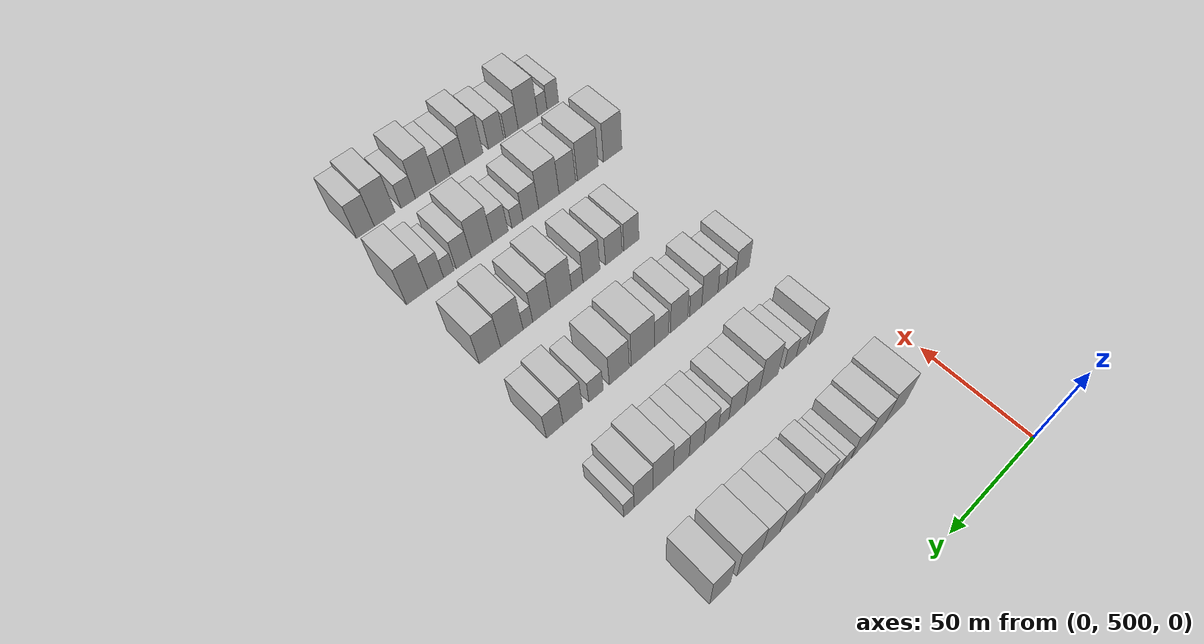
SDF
<sdf version="1.6">
 <world name="default">
  <model name="building_123">
   <static>1</static>
   <pose>50.0000 528.4596 0 0.000000 0.000000 0.000000</pose>
   <link name="link">
    <pose>0 0 12.00 0 0 0</pose>
    <collision name="collision"><geometry><box><size>20.0000 11.9385 24.0000</size></box></geometry></collision>
    <visual name="visual">
     <cast_shadows>0</cast_shadows>
     <geometry><box><size>20.0000 11.9385 24.0000</size></box></geometry>
     <material>
      <script>
       <uri>model://HANNAS_wall/materials/scripts</uri>
       <uri>model://HANNAS_wall/materials/textures</uri>
       <name>vrc/HANNAS_wall</name>
      </script>
     </material>
    </visual>
   </link>
  </model>
  <model name="building_124">
   <static>1</static>
   <pose>50.0000 539.5472 0 0.000000 0.000000 0.000000</pose>
   <link name="link">
    <pose>0 0 10.50 0 0 0</pose>
    <collision name="collision"><geometry><box><size>20.0000 10.2366 21.0000</size></box></geometry></collision>
    <visual name="visual">
     <cast_shadows>0</cast_shadows>
     <geometry><box><size>20.0000 10.2366 21.0000</size></box></geometry>
     <material>
      <script>
       <uri>model://HANNAS_wall/materials/scripts</uri>
       <uri>model://HANNAS_wall/materials/textures</uri>
       <name>vrc/HANNAS_wall</name>
      </script>
     </material>
    </visual>
   </link>
  </model>
  <model name="building_125">
   <static>1</static>
   <pose>50.0000 548.7740 0 0.000000 0.000000 0.000000</pose>
   <link name="link">
    <pose>0 0 9.00 0 0 0</pose>
    <collision name="collision"><geometry><box><size>20.0000 8.2170 18.0000</size></box></geometry></collision>
    <visual name="visual">
     <cast_shadows>0</cast_shadows>
     <geometry><box><size>20.0000 8.2170 18.0000</size></box></geometry>
     <material>
      <script>
       <uri>model://HANNAS_wall/materials/scripts</uri>
       <uri>model://HANNAS_wall/materials/textures</uri>
       <name>vrc/HANNAS_wall</name>
      </script>
     </material>
    </visual>
   </link>
  </model>
  <model name="building_126">
   <static>1</static>
   <pose>50.0000 556.3509 0 0.000000 0.000000 0.000000</pose>
   <link name="link">
    <pose>0 0 6.00 0 0 0</pose>
    <collision name="collision"><geometry><box><size>20.0000 4.9368 12.0000</size></box></geometry></collision>
    <visual name="visual">
     <cast_shadows>0</cast_shadows>
     <geometry><box><size>20.0000 4.9368 12.0000</size></box></geometry>
     <material>
      <script>
       <uri>model://HANNAS_wall/materials/scripts</uri>
       <uri>model://HANNAS_wall/materials/textures</uri>
       <name>vrc/HANNAS_wall</name>
      </script>
     </material>
    </visual>
   </link>
  </model>
  <model name="building_127">
   <static>1</static>
   <pose>50.0000 561.2526 0 0.000000 0.000000 0.000000</pose>
   <link name="link">
    <pose>0 0 6.00 0 0 0</pose>
    <collision name="collision"><geometry><box><size>20.0000 4.8665 12.0000</size></box></geometry></collision>
    <visual name="visual">
     <cast_shadows>0</cast_shadows>
     <geometry><box><size>20.0000 4.8665 12.0000</size></box></geometry>
     <material>
      <script>
       <uri>model://HANNAS_wall/materials/scripts</uri>
       <uri>model://HANNAS_wall/materials/textures</uri>
       <name>vrc/HANNAS_wall</name>
      </script>
     </material>
    </visual>
   </link>
  </model>
  <model name="building_128">
   <static>1</static>
   <pose>50.0000 567.3759 0 0.000000 0.000000 0.000000</pose>
   <link name="link">
    <pose>0 0 9.00 0 0 0</pose>
    <collision name="collision"><geometry><box><size>20.0000 7.3802 18.0000</size></box></geometry></collision>
    <visual name="visual">
     <cast_shadows>0</cast_shadows>
     <geometry><box><size>20.0000 7.3802 18.0000</size></box></geometry>
     <material>
      <script>
       <uri>model://HANNAS_wall/materials/scripts</uri>
       <uri>model://HANNAS_wall/materials/textures</uri>
       <name>vrc/HANNAS_wall</name>
      </script>
     </material>
    </visual>
   </link>
  </model>
  <model name="building_129">
   <static>1</static>
   <pose>50.0000 577.3105 0 0.000000 0.000000 0.000000</pose>
   <link name="link">
    <pose>0 0 9.00 0 0 0</pose>
    <collision name="collision"><geometry><box><size>20.0000 8.4890 18.0000</size></box></geometry></collision>
    <visual name="visual">
     <cast_shadows>0</cast_shadows>
     <geometry><box><size>20.0000 8.4890 18.0000</size></box></geometry>
     <material>
      <script>
       <uri>model://HANNAS_wall/materials/scripts</uri>
       <uri>model://HANNAS_wall/materials/textures</uri>
       <name>vrc/HANNAS_wall</name>
      </script>
     </material>
    </visual>
   </link>
  </model>
  <model name="building_130">
   <static>1</static>
   <pose>50.0000 586.0100 0 0.000000 0.000000 0.000000</pose>
   <link name="link">
    <pose>0 0 10.50 0 0 0</pose>
    <collision name="collision"><geometry><box><size>20.0000 8.9100 21.0000</size></box></geometry></collision>
    <visual name="visual">
     <cast_shadows>0</cast_shadows>
     <geometry><box><size>20.0000 8.9100 21.0000</size></box></geometry>
     <material>
      <script>
       <uri>model://HANNAS_wall/materials/scripts</uri>
       <uri>model://HANNAS_wall/materials/textures</uri>
       <name>vrc/HANNAS_wall</name>
      </script>
     </material>
    </visual>
   </link>
  </model>
  <model name="building_131">
   <static>1</static>
   <pose>50.0000 595.0280 0 0.000000 0.000000 0.000000</pose>
   <link name="link">
    <pose>0 0 10.50 0 0 0</pose>
    <collision name="collision"><geometry><box><size>20.0000 9.1259 21.0000</size></box></geometry></collision>
    <visual name="visual">
     <cast_shadows>0</cast_shadows>
     <geometry><box><size>20.0000 9.1259 21.0000</size></box></geometry>
     <material>
      <script>
       <uri>model://HANNAS_wall/materials/scripts</uri>
       <uri>model://HANNAS_wall/materials/textures</uri>
       <name>vrc/HANNAS_wall</name>
      </script>
     </material>
    </visual>
   </link>
  </model>
  <model name="building_132">
   <static>1</static>
   <pose>50.0000 605.5734 0 0.000000 0.000000 0.000000</pose>
   <link name="link">
    <pose>0 0 12.00 0 0 0</pose>
    <collision name="collision"><geometry><box><size>20.0000 11.9650 24.0000</size></box></geometry></collision>
    <visual name="visual">
     <cast_shadows>0</cast_shadows>
     <geometry><box><size>20.0000 11.9650 24.0000</size></box></geometry>
     <material>
      <script>
       <uri>model://HANNAS_wall/materials/scripts</uri>
       <uri>model://HANNAS_wall/materials/textures</uri>
       <name>vrc/HANNAS_wall</name>
      </script>
     </material>
    </visual>
   </link>
  </model>
  <model name="building_133">
   <static>1</static>
   <pose>50.0000 619.4041 0 0.000000 0.000000 0.000000</pose>
   <link name="link">
    <pose>0 0 12.00 0 0 0</pose>
    <collision name="collision"><geometry><box><size>20.0000 9.6963 24.0000</size></box></geometry></collision>
    <visual name="visual">
     <cast_shadows>0</cast_shadows>
     <geometry><box><size>20.0000 9.6963 24.0000</size></box></geometry>
     <material>
      <script>
       <uri>model://HANNAS_wall/materials/scripts</uri>
       <uri>model://HANNAS_wall/materials/textures</uri>
       <name>vrc/HANNAS_wall</name>
      </script>
     </material>
    </visual>
   </link>
  </model>
  <model name="building_273">
   <static>1</static>
   <pose>90.0000 525.0788 0 0.000000 0.000000 0.000000</pose>
   <link name="link">
    <pose>0 0 9.00 0 0 0</pose>
    <collision name="collision"><geometry><box><size>20.0000 7.4290 18.0000</size></box></geometry></collision>
    <visual name="visual">
     <cast_shadows>0</cast_shadows>
     <geometry><box><size>20.0000 7.4290 18.0000</size></box></geometry>
     <material>
      <script>
       <uri>model://HANNAS_wall/materials/scripts</uri>
       <uri>model://HANNAS_wall/materials/textures</uri>
       <name>vrc/HANNAS_wall</name>
      </script>
     </material>
    </visual>
   </link>
  </model>
  <model name="building_274">
   <static>1</static>
   <pose>90.0000 533.7350 0 0.000000 0.000000 0.000000</pose>
   <link name="link">
    <pose>0 0 6.00 0 0 0</pose>
    <collision name="collision"><geometry><box><size>20.0000 5.8834 12.0000</size></box></geometry></collision>
    <visual name="visual">
     <cast_shadows>0</cast_shadows>
     <geometry><box><size>20.0000 5.8834 12.0000</size></box></geometry>
     <material>
      <script>
       <uri>model://HANNAS_wall/materials/scripts</uri>
       <uri>model://HANNAS_wall/materials/textures</uri>
       <name>vrc/HANNAS_wall</name>
      </script>
     </material>
    </visual>
   </link>
  </model>
  <model name="building_275">
   <static>1</static>
   <pose>90.0000 540.2137 0 0.000000 0.000000 0.000000</pose>
   <link name="link">
    <pose>0 0 7.50 0 0 0</pose>
    <collision name="collision"><geometry><box><size>20.0000 7.0739 15.0000</size></box></geometry></collision>
    <visual name="visual">
     <cast_shadows>0</cast_shadows>
     <geometry><box><size>20.0000 7.0739 15.0000</size></box></geometry>
     <material>
      <script>
       <uri>model://HANNAS_wall/materials/scripts</uri>
       <uri>model://HANNAS_wall/materials/textures</uri>
       <name>vrc/HANNAS_wall</name>
      </script>
     </material>
    </visual>
   </link>
  </model>
  <model name="building_276">
   <static>1</static>
   <pose>90.0000 551.8007 0 0.000000 0.000000 0.000000</pose>
   <link name="link">
    <pose>0 0 12.00 0 0 0</pose>
    <collision name="collision"><geometry><box><size>20.0000 10.1002 24.0000</size></box></geometry></collision>
    <visual name="visual">
     <cast_shadows>0</cast_shadows>
     <geometry><box><size>20.0000 10.1002 24.0000</size></box></geometry>
     <material>
      <script>
       <uri>model://HANNAS_wall/materials/scripts</uri>
       <uri>model://HANNAS_wall/materials/textures</uri>
       <name>vrc/HANNAS_wall</name>
      </script>
     </material>
    </visual>
   </link>
  </model>
  <model name="building_277">
   <static>1</static>
   <pose>90.0000 560.8175 0 0.000000 0.000000 0.000000</pose>
   <link name="link">
    <pose>0 0 9.00 0 0 0</pose>
    <collision name="collision"><geometry><box><size>20.0000 7.9333 18.0000</size></box></geometry></collision>
    <visual name="visual">
     <cast_shadows>0</cast_shadows>
     <geometry><box><size>20.0000 7.9333 18.0000</size></box></geometry>
     <material>
      <script>
       <uri>model://HANNAS_wall/materials/scripts</uri>
       <uri>model://HANNAS_wall/materials/textures</uri>
       <name>vrc/HANNAS_wall</name>
      </script>
     </material>
    </visual>
   </link>
  </model>
  <model name="building_278">
   <static>1</static>
   <pose>90.0000 568.9776 0 0.000000 0.000000 0.000000</pose>
   <link name="link">
    <pose>0 0 9.00 0 0 0</pose>
    <collision name="collision"><geometry><box><size>20.0000 8.3871 18.0000</size></box></geometry></collision>
    <visual name="visual">
     <cast_shadows>0</cast_shadows>
     <geometry><box><size>20.0000 8.3871 18.0000</size></box></geometry>
     <material>
      <script>
       <uri>model://HANNAS_wall/materials/scripts</uri>
       <uri>model://HANNAS_wall/materials/textures</uri>
       <name>vrc/HANNAS_wall</name>
      </script>
     </material>
    </visual>
   </link>
  </model>
  <model name="building_279">
   <static>1</static>
   <pose>90.0000 575.8162 0 0.000000 0.000000 0.000000</pose>
   <link name="link">
    <pose>0 0 6.00 0 0 0</pose>
    <collision name="collision"><geometry><box><size>20.0000 5.2901 12.0000</size></box></geometry></collision>
    <visual name="visual">
     <cast_shadows>0</cast_shadows>
     <geometry><box><size>20.0000 5.2901 12.0000</size></box></geometry>
     <material>
      <script>
       <uri>model://HANNAS_wall/materials/scripts</uri>
       <uri>model://HANNAS_wall/materials/textures</uri>
       <name>vrc/HANNAS_wall</name>
      </script>
     </material>
    </visual>
   </link>
  </model>
  <model name="building_280">
   <static>1</static>
   <pose>90.0000 582.1972 0 0.000000 0.000000 0.000000</pose>
   <link name="link">
    <pose>0 0 9.00 0 0 0</pose>
    <collision name="collision"><geometry><box><size>20.0000 7.4720 18.0000</size></box></geometry></collision>
    <visual name="visual">
     <cast_shadows>0</cast_shadows>
     <geometry><box><size>20.0000 7.4720 18.0000</size></box></geometry>
     <material>
      <script>
       <uri>model://HANNAS_wall/materials/scripts</uri>
       <uri>model://HANNAS_wall/materials/textures</uri>
       <name>vrc/HANNAS_wall</name>
      </script>
     </material>
    </visual>
   </link>
  </model>
  <model name="building_281">
   <static>1</static>
   <pose>90.0000 589.6375 0 0.000000 0.000000 0.000000</pose>
   <link name="link">
    <pose>0 0 9.00 0 0 0</pose>
    <collision name="collision"><geometry><box><size>20.0000 7.4086 18.0000</size></box></geometry></collision>
    <visual name="visual">
     <cast_shadows>0</cast_shadows>
     <geometry><box><size>20.0000 7.4086 18.0000</size></box></geometry>
     <material>
      <script>
       <uri>model://HANNAS_wall/materials/scripts</uri>
       <uri>model://HANNAS_wall/materials/textures</uri>
       <name>vrc/HANNAS_wall</name>
      </script>
     </material>
    </visual>
   </link>
  </model>
  <model name="building_282">
   <static>1</static>
   <pose>90.0000 597.2468 0 0.000000 0.000000 0.000000</pose>
   <link name="link">
    <pose>0 0 9.00 0 0 0</pose>
    <collision name="collision"><geometry><box><size>20.0000 7.8099 18.0000</size></box></geometry></collision>
    <visual name="visual">
     <cast_shadows>0</cast_shadows>
     <geometry><box><size>20.0000 7.8099 18.0000</size></box></geometry>
     <material>
      <script>
       <uri>model://HANNAS_wall/materials/scripts</uri>
       <uri>model://HANNAS_wall/materials/textures</uri>
       <name>vrc/HANNAS_wall</name>
      </script>
     </material>
    </visual>
   </link>
  </model>
  <model name="building_283">
   <static>1</static>
   <pose>90.0000 605.9520 0 0.000000 0.000000 0.000000</pose>
   <link name="link">
    <pose>0 0 12.00 0 0 0</pose>
    <collision name="collision"><geometry><box><size>20.0000 9.6005 24.0000</size></box></geometry></collision>
    <visual name="visual">
     <cast_shadows>0</cast_shadows>
     <geometry><box><size>20.0000 9.6005 24.0000</size></box></geometry>
     <material>
      <script>
       <uri>model://HANNAS_wall/materials/scripts</uri>
       <uri>model://HANNAS_wall/materials/textures</uri>
       <name>vrc/HANNAS_wall</name>
      </script>
     </material>
    </visual>
   </link>
  </model>
  <model name="building_284">
   <static>1</static>
   <pose>90.0000 615.2325 0 0.000000 0.000000 0.000000</pose>
   <link name="link">
    <pose>0 0 10.50 0 0 0</pose>
    <collision name="collision"><geometry><box><size>20.0000 8.9605 21.0000</size></box></geometry></collision>
    <visual name="visual">
     <cast_shadows>0</cast_shadows>
     <geometry><box><size>20.0000 8.9605 21.0000</size></box></geometry>
     <material>
      <script>
       <uri>model://HANNAS_wall/materials/scripts</uri>
       <uri>model://HANNAS_wall/materials/textures</uri>
       <name>vrc/HANNAS_wall</name>
      </script>
     </material>
    </visual>
   </link>
  </model>
  <model name="building_285">
   <static>1</static>
   <pose>90.0000 622.1455 0 0.000000 0.000000 0.000000</pose>
   <link name="link">
    <pose>0 0 6.00 0 0 0</pose>
    <collision name="collision"><geometry><box><size>20.0000 4.8655 12.0000</size></box></geometry></collision>
    <visual name="visual">
     <cast_shadows>0</cast_shadows>
     <geometry><box><size>20.0000 4.8655 12.0000</size></box></geometry>
     <material>
      <script>
       <uri>model://HANNAS_wall/materials/scripts</uri>
       <uri>model://HANNAS_wall/materials/textures</uri>
       <name>vrc/HANNAS_wall</name>
      </script>
     </material>
    </visual>
   </link>
  </model>
  <model name="building_403">
   <static>1</static>
   <pose>130.0000 523.1226 0 0.000000 0.000000 0.000000</pose>
   <link name="link">
    <pose>0 0 9.00 0 0 0</pose>
    <collision name="collision"><geometry><box><size>20.0000 7.9618 18.0000</size></box></geometry></collision>
    <visual name="visual">
     <cast_shadows>0</cast_shadows>
     <geometry><box><size>20.0000 7.9618 18.0000</size></box></geometry>
     <material>
      <script>
       <uri>model://HANNAS_wall/materials/scripts</uri>
       <uri>model://HANNAS_wall/materials/textures</uri>
       <name>vrc/HANNAS_wall</name>
      </script>
     </material>
    </visual>
   </link>
  </model>
  <model name="building_404">
   <static>1</static>
   <pose>130.0000 529.6719 0 0.000000 0.000000 0.000000</pose>
   <link name="link">
    <pose>0 0 6.00 0 0 0</pose>
    <collision name="collision"><geometry><box><size>20.0000 5.1367 12.0000</size></box></geometry></collision>
    <visual name="visual">
     <cast_shadows>0</cast_shadows>
     <geometry><box><size>20.0000 5.1367 12.0000</size></box></geometry>
     <material>
      <script>
       <uri>model://HANNAS_wall/materials/scripts</uri>
       <uri>model://HANNAS_wall/materials/textures</uri>
       <name>vrc/HANNAS_wall</name>
      </script>
     </material>
    </visual>
   </link>
  </model>
  <model name="building_405">
   <static>1</static>
   <pose>130.0000 534.7090 0 0.000000 0.000000 0.000000</pose>
   <link name="link">
    <pose>0 0 6.00 0 0 0</pose>
    <collision name="collision"><geometry><box><size>20.0000 4.9374 12.0000</size></box></geometry></collision>
    <visual name="visual">
     <cast_shadows>0</cast_shadows>
     <geometry><box><size>20.0000 4.9374 12.0000</size></box></geometry>
     <material>
      <script>
       <uri>model://HANNAS_wall/materials/scripts</uri>
       <uri>model://HANNAS_wall/materials/textures</uri>
       <name>vrc/HANNAS_wall</name>
      </script>
     </material>
    </visual>
   </link>
  </model>
  <model name="building_406">
   <static>1</static>
   <pose>130.0000 541.6652 0 0.000000 0.000000 0.000000</pose>
   <link name="link">
    <pose>0 0 10.50 0 0 0</pose>
    <collision name="collision"><geometry><box><size>20.0000 8.9751 21.0000</size></box></geometry></collision>
    <visual name="visual">
     <cast_shadows>0</cast_shadows>
     <geometry><box><size>20.0000 8.9751 21.0000</size></box></geometry>
     <material>
      <script>
       <uri>model://HANNAS_wall/materials/scripts</uri>
       <uri>model://HANNAS_wall/materials/textures</uri>
       <name>vrc/HANNAS_wall</name>
      </script>
     </material>
    </visual>
   </link>
  </model>
  <model name="building_407">
   <static>1</static>
   <pose>130.0000 549.4956 0 0.000000 0.000000 0.000000</pose>
   <link name="link">
    <pose>0 0 7.50 0 0 0</pose>
    <collision name="collision"><geometry><box><size>20.0000 6.6856 15.0000</size></box></geometry></collision>
    <visual name="visual">
     <cast_shadows>0</cast_shadows>
     <geometry><box><size>20.0000 6.6856 15.0000</size></box></geometry>
     <material>
      <script>
       <uri>model://HANNAS_wall/materials/scripts</uri>
       <uri>model://HANNAS_wall/materials/textures</uri>
       <name>vrc/HANNAS_wall</name>
      </script>
     </material>
    </visual>
   </link>
  </model>
  <model name="building_408">
   <static>1</static>
   <pose>130.0000 558.4822 0 0.000000 0.000000 0.000000</pose>
   <link name="link">
    <pose>0 0 10.50 0 0 0</pose>
    <collision name="collision"><geometry><box><size>20.0000 9.2876 21.0000</size></box></geometry></collision>
    <visual name="visual">
     <cast_shadows>0</cast_shadows>
     <geometry><box><size>20.0000 9.2876 21.0000</size></box></geometry>
     <material>
      <script>
       <uri>model://HANNAS_wall/materials/scripts</uri>
       <uri>model://HANNAS_wall/materials/textures</uri>
       <name>vrc/HANNAS_wall</name>
      </script>
     </material>
    </visual>
   </link>
  </model>
  <model name="building_409">
   <static>1</static>
   <pose>130.0000 567.9056 0 0.000000 0.000000 0.000000</pose>
   <link name="link">
    <pose>0 0 9.00 0 0 0</pose>
    <collision name="collision"><geometry><box><size>20.0000 7.5592 18.0000</size></box></geometry></collision>
    <visual name="visual">
     <cast_shadows>0</cast_shadows>
     <geometry><box><size>20.0000 7.5592 18.0000</size></box></geometry>
     <material>
      <script>
       <uri>model://HANNAS_wall/materials/scripts</uri>
       <uri>model://HANNAS_wall/materials/textures</uri>
       <name>vrc/HANNAS_wall</name>
      </script>
     </material>
    </visual>
   </link>
  </model>
  <model name="building_410">
   <static>1</static>
   <pose>130.0000 577.5824 0 0.000000 0.000000 0.000000</pose>
   <link name="link">
    <pose>0 0 12.00 0 0 0</pose>
    <collision name="collision"><geometry><box><size>20.0000 11.7943 24.0000</size></box></geometry></collision>
    <visual name="visual">
     <cast_shadows>0</cast_shadows>
     <geometry><box><size>20.0000 11.7943 24.0000</size></box></geometry>
     <material>
      <script>
       <uri>model://HANNAS_wall/materials/scripts</uri>
       <uri>model://HANNAS_wall/materials/textures</uri>
       <name>vrc/HANNAS_wall</name>
      </script>
     </material>
    </visual>
   </link>
  </model>
  <model name="building_411">
   <static>1</static>
   <pose>130.0000 589.4962 0 0.000000 0.000000 0.000000</pose>
   <link name="link">
    <pose>0 0 10.50 0 0 0</pose>
    <collision name="collision"><geometry><box><size>20.0000 10.0333 21.0000</size></box></geometry></collision>
    <visual name="visual">
     <cast_shadows>0</cast_shadows>
     <geometry><box><size>20.0000 10.0333 21.0000</size></box></geometry>
     <material>
      <script>
       <uri>model://HANNAS_wall/materials/scripts</uri>
       <uri>model://HANNAS_wall/materials/textures</uri>
       <name>vrc/HANNAS_wall</name>
      </script>
     </material>
    </visual>
   </link>
  </model>
  <model name="building_412">
   <static>1</static>
   <pose>130.0000 601.0543 0 0.000000 0.000000 0.000000</pose>
   <link name="link">
    <pose>0 0 7.50 0 0 0</pose>
    <collision name="collision"><geometry><box><size>20.0000 7.0829 15.0000</size></box></geometry></collision>
    <visual name="visual">
     <cast_shadows>0</cast_shadows>
     <geometry><box><size>20.0000 7.0829 15.0000</size></box></geometry>
     <material>
      <script>
       <uri>model://HANNAS_wall/materials/scripts</uri>
       <uri>model://HANNAS_wall/materials/textures</uri>
       <name>vrc/HANNAS_wall</name>
      </script>
     </material>
    </visual>
   </link>
  </model>
  <model name="building_413">
   <static>1</static>
   <pose>130.0000 612.2391 0 0.000000 0.000000 0.000000</pose>
   <link name="link">
    <pose>0 0 10.50 0 0 0</pose>
    <collision name="collision"><geometry><box><size>20.0000 9.2866 21.0000</size></box></geometry></collision>
    <visual name="visual">
     <cast_shadows>0</cast_shadows>
     <geometry><box><size>20.0000 9.2866 21.0000</size></box></geometry>
     <material>
      <script>
       <uri>model://HANNAS_wall/materials/scripts</uri>
       <uri>model://HANNAS_wall/materials/textures</uri>
       <name>vrc/HANNAS_wall</name>
      </script>
     </material>
    </visual>
   </link>
  </model>
  <model name="building_414">
   <static>1</static>
   <pose>130.0000 620.8093 0 0.000000 0.000000 0.000000</pose>
   <link name="link">
    <pose>0 0 9.00 0 0 0</pose>
    <collision name="collision"><geometry><box><size>20.0000 7.8538 18.0000</size></box></geometry></collision>
    <visual name="visual">
     <cast_shadows>0</cast_shadows>
     <geometry><box><size>20.0000 7.8538 18.0000</size></box></geometry>
     <material>
      <script>
       <uri>model://HANNAS_wall/materials/scripts</uri>
       <uri>model://HANNAS_wall/materials/textures</uri>
       <name>vrc/HANNAS_wall</name>
      </script>
     </material>
    </visual>
   </link>
  </model>
  <model name="building_537">
   <static>1</static>
   <pose>170.0000 545.7697 0 0.000000 0.000000 0.000000</pose>
   <link name="link">
    <pose>0 0 9.00 0 0 0</pose>
    <collision name="collision"><geometry><box><size>20.0000 8.2819 18.0000</size></box></geometry></collision>
    <visual name="visual">
     <cast_shadows>0</cast_shadows>
     <geometry><box><size>20.0000 8.2819 18.0000</size></box></geometry>
     <material>
      <script>
       <uri>model://HANNAS_wall/materials/scripts</uri>
       <uri>model://HANNAS_wall/materials/textures</uri>
       <name>vrc/HANNAS_wall</name>
      </script>
     </material>
    </visual>
   </link>
  </model>
  <model name="building_538">
   <static>1</static>
   <pose>170.0000 555.3766 0 0.000000 0.000000 0.000000</pose>
   <link name="link">
    <pose>0 0 9.00 0 0 0</pose>
    <collision name="collision"><geometry><box><size>20.0000 8.9319 18.0000</size></box></geometry></collision>
    <visual name="visual">
     <cast_shadows>0</cast_shadows>
     <geometry><box><size>20.0000 8.9319 18.0000</size></box></geometry>
     <material>
      <script>
       <uri>model://HANNAS_wall/materials/scripts</uri>
       <uri>model://HANNAS_wall/materials/textures</uri>
       <name>vrc/HANNAS_wall</name>
      </script>
     </material>
    </visual>
   </link>
  </model>
  <model name="building_539">
   <static>1</static>
   <pose>170.0000 567.3300 0 0.000000 0.000000 0.000000</pose>
   <link name="link">
    <pose>0 0 10.50 0 0 0</pose>
    <collision name="collision"><geometry><box><size>20.0000 8.9748 21.0000</size></box></geometry></collision>
    <visual name="visual">
     <cast_shadows>0</cast_shadows>
     <geometry><box><size>20.0000 8.9748 21.0000</size></box></geometry>
     <material>
      <script>
       <uri>model://HANNAS_wall/materials/scripts</uri>
       <uri>model://HANNAS_wall/materials/textures</uri>
       <name>vrc/HANNAS_wall</name>
      </script>
     </material>
    </visual>
   </link>
  </model>
  <model name="building_540">
   <static>1</static>
   <pose>170.0000 574.7303 0 0.000000 0.000000 0.000000</pose>
   <link name="link">
    <pose>0 0 6.00 0 0 0</pose>
    <collision name="collision"><geometry><box><size>20.0000 5.8257 12.0000</size></box></geometry></collision>
    <visual name="visual">
     <cast_shadows>0</cast_shadows>
     <geometry><box><size>20.0000 5.8257 12.0000</size></box></geometry>
     <material>
      <script>
       <uri>model://HANNAS_wall/materials/scripts</uri>
       <uri>model://HANNAS_wall/materials/textures</uri>
       <name>vrc/HANNAS_wall</name>
      </script>
     </material>
    </visual>
   </link>
  </model>
  <model name="building_541">
   <static>1</static>
   <pose>170.0000 583.0833 0 0.000000 0.000000 0.000000</pose>
   <link name="link">
    <pose>0 0 12.00 0 0 0</pose>
    <collision name="collision"><geometry><box><size>20.0000 10.8804 24.0000</size></box></geometry></collision>
    <visual name="visual">
     <cast_shadows>0</cast_shadows>
     <geometry><box><size>20.0000 10.8804 24.0000</size></box></geometry>
     <material>
      <script>
       <uri>model://HANNAS_wall/materials/scripts</uri>
       <uri>model://HANNAS_wall/materials/textures</uri>
       <name>vrc/HANNAS_wall</name>
      </script>
     </material>
    </visual>
   </link>
  </model>
  <model name="building_542">
   <static>1</static>
   <pose>170.0000 593.0234 0 0.000000 0.000000 0.000000</pose>
   <link name="link">
    <pose>0 0 10.50 0 0 0</pose>
    <collision name="collision"><geometry><box><size>20.0000 8.9997 21.0000</size></box></geometry></collision>
    <visual name="visual">
     <cast_shadows>0</cast_shadows>
     <geometry><box><size>20.0000 8.9997 21.0000</size></box></geometry>
     <material>
      <script>
       <uri>model://HANNAS_wall/materials/scripts</uri>
       <uri>model://HANNAS_wall/materials/textures</uri>
       <name>vrc/HANNAS_wall</name>
      </script>
     </material>
    </visual>
   </link>
  </model>
  <model name="building_543">
   <static>1</static>
   <pose>170.0000 599.9318 0 0.000000 0.000000 0.000000</pose>
   <link name="link">
    <pose>0 0 6.00 0 0 0</pose>
    <collision name="collision"><geometry><box><size>20.0000 4.8172 12.0000</size></box></geometry></collision>
    <visual name="visual">
     <cast_shadows>0</cast_shadows>
     <geometry><box><size>20.0000 4.8172 12.0000</size></box></geometry>
     <material>
      <script>
       <uri>model://HANNAS_wall/materials/scripts</uri>
       <uri>model://HANNAS_wall/materials/textures</uri>
       <name>vrc/HANNAS_wall</name>
      </script>
     </material>
    </visual>
   </link>
  </model>
  <model name="building_544">
   <static>1</static>
   <pose>170.0000 607.7904 0 0.000000 0.000000 0.000000</pose>
   <link name="link">
    <pose>0 0 12.00 0 0 0</pose>
    <collision name="collision"><geometry><box><size>20.0000 10.9000 24.0000</size></box></geometry></collision>
    <visual name="visual">
     <cast_shadows>0</cast_shadows>
     <geometry><box><size>20.0000 10.9000 24.0000</size></box></geometry>
     <material>
      <script>
       <uri>model://HANNAS_wall/materials/scripts</uri>
       <uri>model://HANNAS_wall/materials/textures</uri>
       <name>vrc/HANNAS_wall</name>
      </script>
     </material>
    </visual>
   </link>
  </model>
  <model name="building_545">
   <static>1</static>
   <pose>170.0000 618.3335 0 0.000000 0.000000 0.000000</pose>
   <link name="link">
    <pose>0 0 10.50 0 0 0</pose>
    <collision name="collision"><geometry><box><size>20.0000 10.1862 21.0000</size></box></geometry></collision>
    <visual name="visual">
     <cast_shadows>0</cast_shadows>
     <geometry><box><size>20.0000 10.1862 21.0000</size></box></geometry>
     <material>
      <script>
       <uri>model://HANNAS_wall/materials/scripts</uri>
       <uri>model://HANNAS_wall/materials/textures</uri>
       <name>vrc/HANNAS_wall</name>
      </script>
     </material>
    </visual>
   </link>
  </model>
  <model name="building_668">
   <static>1</static>
   <pose>210.0000 519.1886 0 0.000000 0.000000 0.000000</pose>
   <link name="link">
    <pose>0 0 12.00 0 0 0</pose>
    <collision name="collision"><geometry><box><size>20.0000 10.7886 24.0000</size></box></geometry></collision>
    <visual name="visual">
     <cast_shadows>0</cast_shadows>
     <geometry><box><size>20.0000 10.7886 24.0000</size></box></geometry>
     <material>
      <script>
       <uri>model://HANNAS_wall/materials/scripts</uri>
       <uri>model://HANNAS_wall/materials/textures</uri>
       <name>vrc/HANNAS_wall</name>
      </script>
     </material>
    </visual>
   </link>
  </model>
  <model name="building_669">
   <static>1</static>
   <pose>210.0000 533.5049 0 0.000000 0.000000 0.000000</pose>
   <link name="link">
    <pose>0 0 12.00 0 0 0</pose>
    <collision name="collision"><geometry><box><size>20.0000 11.8440 24.0000</size></box></geometry></collision>
    <visual name="visual">
     <cast_shadows>0</cast_shadows>
     <geometry><box><size>20.0000 11.8440 24.0000</size></box></geometry>
     <material>
      <script>
       <uri>model://HANNAS_wall/materials/scripts</uri>
       <uri>model://HANNAS_wall/materials/textures</uri>
       <name>vrc/HANNAS_wall</name>
      </script>
     </material>
    </visual>
   </link>
  </model>
  <model name="building_670">
   <static>1</static>
   <pose>210.0000 545.0594 0 0.000000 0.000000 0.000000</pose>
   <link name="link">
    <pose>0 0 10.50 0 0 0</pose>
    <collision name="collision"><geometry><box><size>20.0000 9.2650 21.0000</size></box></geometry></collision>
    <visual name="visual">
     <cast_shadows>0</cast_shadows>
     <geometry><box><size>20.0000 9.2650 21.0000</size></box></geometry>
     <material>
      <script>
       <uri>model://HANNAS_wall/materials/scripts</uri>
       <uri>model://HANNAS_wall/materials/textures</uri>
       <name>vrc/HANNAS_wall</name>
      </script>
     </material>
    </visual>
   </link>
  </model>
  <model name="building_671">
   <static>1</static>
   <pose>210.0000 555.2672 0 0.000000 0.000000 0.000000</pose>
   <link name="link">
    <pose>0 0 12.00 0 0 0</pose>
    <collision name="collision"><geometry><box><size>20.0000 11.1507 24.0000</size></box></geometry></collision>
    <visual name="visual">
     <cast_shadows>0</cast_shadows>
     <geometry><box><size>20.0000 11.1507 24.0000</size></box></geometry>
     <material>
      <script>
       <uri>model://HANNAS_wall/materials/scripts</uri>
       <uri>model://HANNAS_wall/materials/textures</uri>
       <name>vrc/HANNAS_wall</name>
      </script>
     </material>
    </visual>
   </link>
  </model>
  <model name="building_672">
   <static>1</static>
   <pose>210.0000 565.0670 0 0.000000 0.000000 0.000000</pose>
   <link name="link">
    <pose>0 0 9.00 0 0 0</pose>
    <collision name="collision"><geometry><box><size>20.0000 8.4488 18.0000</size></box></geometry></collision>
    <visual name="visual">
     <cast_shadows>0</cast_shadows>
     <geometry><box><size>20.0000 8.4488 18.0000</size></box></geometry>
     <material>
      <script>
       <uri>model://HANNAS_wall/materials/scripts</uri>
       <uri>model://HANNAS_wall/materials/textures</uri>
       <name>vrc/HANNAS_wall</name>
      </script>
     </material>
    </visual>
   </link>
  </model>
  <model name="building_673">
   <static>1</static>
   <pose>210.0000 572.1894 0 0.000000 0.000000 0.000000</pose>
   <link name="link">
    <pose>0 0 6.00 0 0 0</pose>
    <collision name="collision"><geometry><box><size>20.0000 5.7960 12.0000</size></box></geometry></collision>
    <visual name="visual">
     <cast_shadows>0</cast_shadows>
     <geometry><box><size>20.0000 5.7960 12.0000</size></box></geometry>
     <material>
      <script>
       <uri>model://HANNAS_wall/materials/scripts</uri>
       <uri>model://HANNAS_wall/materials/textures</uri>
       <name>vrc/HANNAS_wall</name>
      </script>
     </material>
    </visual>
   </link>
  </model>
  <model name="building_674">
   <static>1</static>
   <pose>210.0000 581.1921 0 0.000000 0.000000 0.000000</pose>
   <link name="link">
    <pose>0 0 9.00 0 0 0</pose>
    <collision name="collision"><geometry><box><size>20.0000 8.2096 18.0000</size></box></geometry></collision>
    <visual name="visual">
     <cast_shadows>0</cast_shadows>
     <geometry><box><size>20.0000 8.2096 18.0000</size></box></geometry>
     <material>
      <script>
       <uri>model://HANNAS_wall/materials/scripts</uri>
       <uri>model://HANNAS_wall/materials/textures</uri>
       <name>vrc/HANNAS_wall</name>
      </script>
     </material>
    </visual>
   </link>
  </model>
  <model name="building_675">
   <static>1</static>
   <pose>210.0000 590.6491 0 0.000000 0.000000 0.000000</pose>
   <link name="link">
    <pose>0 0 12.00 0 0 0</pose>
    <collision name="collision"><geometry><box><size>20.0000 10.7043 24.0000</size></box></geometry></collision>
    <visual name="visual">
     <cast_shadows>0</cast_shadows>
     <geometry><box><size>20.0000 10.7043 24.0000</size></box></geometry>
     <material>
      <script>
       <uri>model://HANNAS_wall/materials/scripts</uri>
       <uri>model://HANNAS_wall/materials/textures</uri>
       <name>vrc/HANNAS_wall</name>
      </script>
     </material>
    </visual>
   </link>
  </model>
  <model name="building_676">
   <static>1</static>
   <pose>210.0000 599.8379 0 0.000000 0.000000 0.000000</pose>
   <link name="link">
    <pose>0 0 9.00 0 0 0</pose>
    <collision name="collision"><geometry><box><size>20.0000 7.6733 18.0000</size></box></geometry></collision>
    <visual name="visual">
     <cast_shadows>0</cast_shadows>
     <geometry><box><size>20.0000 7.6733 18.0000</size></box></geometry>
     <material>
      <script>
       <uri>model://HANNAS_wall/materials/scripts</uri>
       <uri>model://HANNAS_wall/materials/textures</uri>
       <name>vrc/HANNAS_wall</name>
      </script>
     </material>
    </visual>
   </link>
  </model>
  <model name="building_677">
   <static>1</static>
   <pose>210.0000 607.2343 0 0.000000 0.000000 0.000000</pose>
   <link name="link">
    <pose>0 0 6.00 0 0 0</pose>
    <collision name="collision"><geometry><box><size>20.0000 5.1196 12.0000</size></box></geometry></collision>
    <visual name="visual">
     <cast_shadows>0</cast_shadows>
     <geometry><box><size>20.0000 5.1196 12.0000</size></box></geometry>
     <material>
      <script>
       <uri>model://HANNAS_wall/materials/scripts</uri>
       <uri>model://HANNAS_wall/materials/textures</uri>
       <name>vrc/HANNAS_wall</name>
      </script>
     </material>
    </visual>
   </link>
  </model>
  <model name="building_678">
   <static>1</static>
   <pose>210.0000 613.6526 0 0.000000 0.000000 0.000000</pose>
   <link name="link">
    <pose>0 0 9.00 0 0 0</pose>
    <collision name="collision"><geometry><box><size>20.0000 7.7169 18.0000</size></box></geometry></collision>
    <visual name="visual">
     <cast_shadows>0</cast_shadows>
     <geometry><box><size>20.0000 7.7169 18.0000</size></box></geometry>
     <material>
      <script>
       <uri>model://HANNAS_wall/materials/scripts</uri>
       <uri>model://HANNAS_wall/materials/textures</uri>
       <name>vrc/HANNAS_wall</name>
      </script>
     </material>
    </visual>
   </link>
  </model>
  <model name="building_679">
   <static>1</static>
   <pose>210.0000 622.5830 0 0.000000 0.000000 0.000000</pose>
   <link name="link">
    <pose>0 0 12.00 0 0 0</pose>
    <collision name="collision"><geometry><box><size>20.0000 10.1439 24.0000</size></box></geometry></collision>
    <visual name="visual">
     <cast_shadows>0</cast_shadows>
     <geometry><box><size>20.0000 10.1439 24.0000</size></box></geometry>
     <material>
      <script>
       <uri>model://HANNAS_wall/materials/scripts</uri>
       <uri>model://HANNAS_wall/materials/textures</uri>
       <name>vrc/HANNAS_wall</name>
      </script>
     </material>
    </visual>
   </link>
  </model>
  <model name="building_807">
   <static>1</static>
   <pose>250.0000 518.7939 0 0.000000 0.000000 0.000000</pose>
   <link name="link">
    <pose>0 0 7.50 0 0 0</pose>
    <collision name="collision"><geometry><box><size>20.0000 6.7862 15.0000</size></box></geometry></collision>
    <visual name="visual">
     <cast_shadows>0</cast_shadows>
     <geometry><box><size>20.0000 6.7862 15.0000</size></box></geometry>
     <material>
      <script>
       <uri>model://HANNAS_wall/materials/scripts</uri>
       <uri>model://HANNAS_wall/materials/textures</uri>
       <name>vrc/HANNAS_wall</name>
      </script>
     </material>
    </visual>
   </link>
  </model>
  <model name="building_808">
   <static>1</static>
   <pose>250.0000 524.9253 0 0.000000 0.000000 0.000000</pose>
   <link name="link">
    <pose>0 0 6.00 0 0 0</pose>
    <collision name="collision"><geometry><box><size>20.0000 5.4765 12.0000</size></box></geometry></collision>
    <visual name="visual">
     <cast_shadows>0</cast_shadows>
     <geometry><box><size>20.0000 5.4765 12.0000</size></box></geometry>
     <material>
      <script>
       <uri>model://HANNAS_wall/materials/scripts</uri>
       <uri>model://HANNAS_wall/materials/textures</uri>
       <name>vrc/HANNAS_wall</name>
      </script>
     </material>
    </visual>
   </link>
  </model>
  <model name="building_809">
   <static>1</static>
   <pose>250.0000 533.2593 0 0.000000 0.000000 0.000000</pose>
   <link name="link">
    <pose>0 0 12.00 0 0 0</pose>
    <collision name="collision"><geometry><box><size>20.0000 11.1915 24.0000</size></box></geometry></collision>
    <visual name="visual">
     <cast_shadows>0</cast_shadows>
     <geometry><box><size>20.0000 11.1915 24.0000</size></box></geometry>
     <material>
      <script>
       <uri>model://HANNAS_wall/materials/scripts</uri>
       <uri>model://HANNAS_wall/materials/textures</uri>
       <name>vrc/HANNAS_wall</name>
      </script>
     </material>
    </visual>
   </link>
  </model>
  <model name="building_810">
   <static>1</static>
   <pose>250.0000 542.4409 0 0.000000 0.000000 0.000000</pose>
   <link name="link">
    <pose>0 0 7.50 0 0 0</pose>
    <collision name="collision"><geometry><box><size>20.0000 7.1717 15.0000</size></box></geometry></collision>
    <visual name="visual">
     <cast_shadows>0</cast_shadows>
     <geometry><box><size>20.0000 7.1717 15.0000</size></box></geometry>
     <material>
      <script>
       <uri>model://HANNAS_wall/materials/scripts</uri>
       <uri>model://HANNAS_wall/materials/textures</uri>
       <name>vrc/HANNAS_wall</name>
      </script>
     </material>
    </visual>
   </link>
  </model>
  <model name="building_811">
   <static>1</static>
   <pose>250.0000 551.2822 0 0.000000 0.000000 0.000000</pose>
   <link name="link">
    <pose>0 0 9.00 0 0 0</pose>
    <collision name="collision"><geometry><box><size>20.0000 8.5109 18.0000</size></box></geometry></collision>
    <visual name="visual">
     <cast_shadows>0</cast_shadows>
     <geometry><box><size>20.0000 8.5109 18.0000</size></box></geometry>
     <material>
      <script>
       <uri>model://HANNAS_wall/materials/scripts</uri>
       <uri>model://HANNAS_wall/materials/textures</uri>
       <name>vrc/HANNAS_wall</name>
      </script>
     </material>
    </visual>
   </link>
  </model>
  <model name="building_812">
   <static>1</static>
   <pose>250.0000 563.3890 0 0.000000 0.000000 0.000000</pose>
   <link name="link">
    <pose>0 0 12.00 0 0 0</pose>
    <collision name="collision"><geometry><box><size>20.0000 9.7028 24.0000</size></box></geometry></collision>
    <visual name="visual">
     <cast_shadows>0</cast_shadows>
     <geometry><box><size>20.0000 9.7028 24.0000</size></box></geometry>
     <material>
      <script>
       <uri>model://HANNAS_wall/materials/scripts</uri>
       <uri>model://HANNAS_wall/materials/textures</uri>
       <name>vrc/HANNAS_wall</name>
      </script>
     </material>
    </visual>
   </link>
  </model>
  <model name="building_813">
   <static>1</static>
   <pose>250.0000 572.2111 0 0.000000 0.000000 0.000000</pose>
   <link name="link">
    <pose>0 0 9.00 0 0 0</pose>
    <collision name="collision"><geometry><box><size>20.0000 7.9414 18.0000</size></box></geometry></collision>
    <visual name="visual">
     <cast_shadows>0</cast_shadows>
     <geometry><box><size>20.0000 7.9414 18.0000</size></box></geometry>
     <material>
      <script>
       <uri>model://HANNAS_wall/materials/scripts</uri>
       <uri>model://HANNAS_wall/materials/textures</uri>
       <name>vrc/HANNAS_wall</name>
      </script>
     </material>
    </visual>
   </link>
  </model>
  <model name="building_814">
   <static>1</static>
   <pose>250.0000 579.9269 0 0.000000 0.000000 0.000000</pose>
   <link name="link">
    <pose>0 0 9.00 0 0 0</pose>
    <collision name="collision"><geometry><box><size>20.0000 7.4901 18.0000</size></box></geometry></collision>
    <visual name="visual">
     <cast_shadows>0</cast_shadows>
     <geometry><box><size>20.0000 7.4901 18.0000</size></box></geometry>
     <material>
      <script>
       <uri>model://HANNAS_wall/materials/scripts</uri>
       <uri>model://HANNAS_wall/materials/textures</uri>
       <name>vrc/HANNAS_wall</name>
      </script>
     </material>
    </visual>
   </link>
  </model>
  <model name="building_815">
   <static>1</static>
   <pose>250.0000 589.0101 0 0.000000 0.000000 0.000000</pose>
   <link name="link">
    <pose>0 0 12.00 0 0 0</pose>
    <collision name="collision"><geometry><box><size>20.0000 10.6763 24.0000</size></box></geometry></collision>
    <visual name="visual">
     <cast_shadows>0</cast_shadows>
     <geometry><box><size>20.0000 10.6763 24.0000</size></box></geometry>
     <material>
      <script>
       <uri>model://HANNAS_wall/materials/scripts</uri>
       <uri>model://HANNAS_wall/materials/textures</uri>
       <name>vrc/HANNAS_wall</name>
      </script>
     </material>
    </visual>
   </link>
  </model>
  <model name="building_816">
   <static>1</static>
   <pose>250.0000 598.0054 0 0.000000 0.000000 0.000000</pose>
   <link name="link">
    <pose>0 0 7.50 0 0 0</pose>
    <collision name="collision"><geometry><box><size>20.0000 7.3143 15.0000</size></box></geometry></collision>
    <visual name="visual">
     <cast_shadows>0</cast_shadows>
     <geometry><box><size>20.0000 7.3143 15.0000</size></box></geometry>
     <material>
      <script>
       <uri>model://HANNAS_wall/materials/scripts</uri>
       <uri>model://HANNAS_wall/materials/textures</uri>
       <name>vrc/HANNAS_wall</name>
      </script>
     </material>
    </visual>
   </link>
  </model>
  <model name="building_817">
   <static>1</static>
   <pose>250.0000 609.8096 0 0.000000 0.000000 0.000000</pose>
   <link name="link">
    <pose>0 0 12.00 0 0 0</pose>
    <collision name="collision"><geometry><box><size>20.0000 10.2941 24.0000</size></box></geometry></collision>
    <visual name="visual">
     <cast_shadows>0</cast_shadows>
     <geometry><box><size>20.0000 10.2941 24.0000</size></box></geometry>
     <material>
      <script>
       <uri>model://HANNAS_wall/materials/scripts</uri>
       <uri>model://HANNAS_wall/materials/textures</uri>
       <name>vrc/HANNAS_wall</name>
      </script>
     </material>
    </visual>
   </link>
  </model>
  <model name="building_818">
   <static>1</static>
   <pose>250.0000 619.3108 0 0.000000 0.000000 0.000000</pose>
   <link name="link">
    <pose>0 0 10.50 0 0 0</pose>
    <collision name="collision"><geometry><box><size>20.0000 8.7084 21.0000</size></box></geometry></collision>
    <visual name="visual">
     <cast_shadows>0</cast_shadows>
     <geometry><box><size>20.0000 8.7084 21.0000</size></box></geometry>
     <material>
      <script>
       <uri>model://HANNAS_wall/materials/scripts</uri>
       <uri>model://HANNAS_wall/materials/textures</uri>
       <name>vrc/HANNAS_wall</name>
      </script>
     </material>
    </visual>
   </link>
  </model>
 </world>
</sdf>
